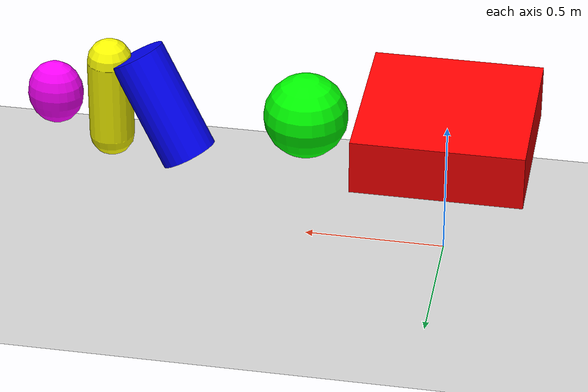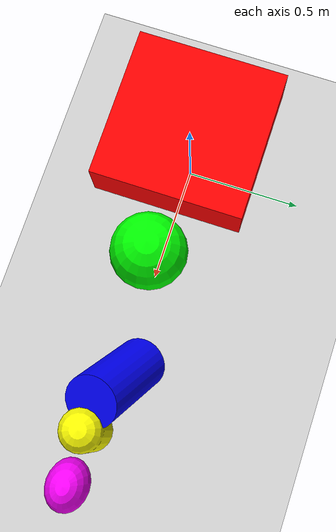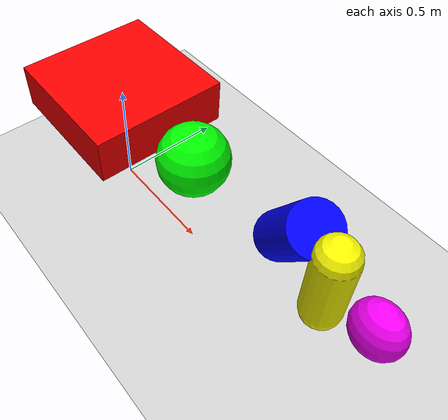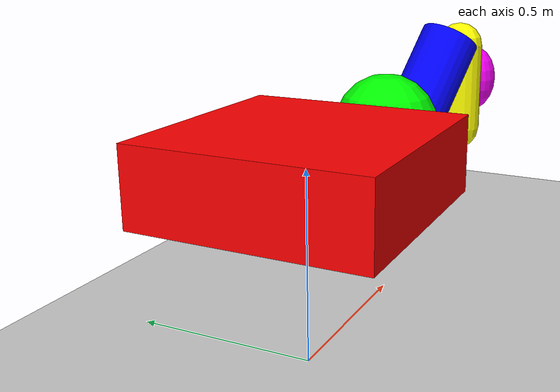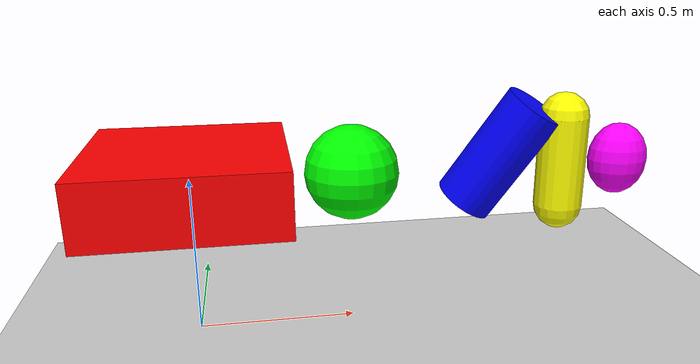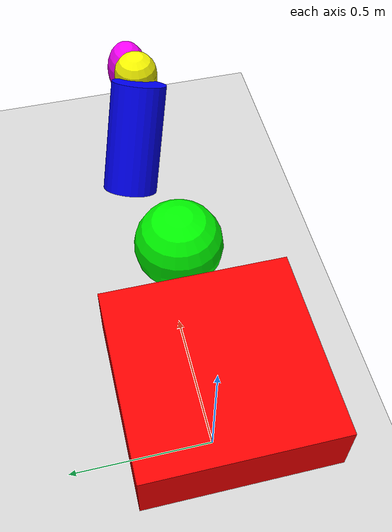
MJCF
<?xml version="1.0" encoding="utf-8"?>
<mujoco model="test_model">
  <option timestep="0.01"/>

  <asset>
    <!-- Simple assets for testing -->
  </asset>

  <worldbody>
    <!-- Ground plane -->
    <geom name="ground" type="plane" size="5 5 0.1" rgba="0.8 0.8 0.8 1"/>

    <!-- Base body with a box -->
    <body name="base" pos="0 0 0.5">
      <geom name="base_geom" type="box" size="0.3 0.3 0.1" rgba="1 0 0 1"/>

      <!-- Link 1 with a sphere -->
      <body name="link1" pos="0.5 0 0">
        <joint name="joint1" type="hinge" axis="0 0 1" range="-180 180"/>
        <geom name="link1_geom" type="sphere" size="0.15" rgba="0 1 0 1"/>

        <!-- Link 2 with a cylinder -->
        <body name="link2" pos="0.4 0 0">
          <joint name="joint2" type="hinge" axis="0 0 1" range="-180 180"/>
          <geom name="link2_geom" type="cylinder" size="0.1 0.2" rgba="0 0 1 1" pos="0.1 0.05 0.02" euler="15 30 45"/>

          <!-- Link 3 with a capsule -->
          <body name="link3" pos="0.3 0 0">
            <joint name="joint3" type="hinge" axis="0 0 1" range="-180 180"/>
            <geom name="link3_geom" type="capsule" size="0.08 0.15" rgba="1 1 0 1"/>

            <!-- Link 4 with an ellipsoid -->
            <body name="link4" pos="0.2 0 0">
              <joint name="joint4" type="hinge" axis="0 0 1" range="-180 180"/>
              <geom name="link4_geom" type="ellipsoid" size="0.1 0.08 0.12" rgba="1 0 1 1"/>
            </body>
          </body>
        </body>
      </body>
    </body>
  </worldbody>
</mujoco>
